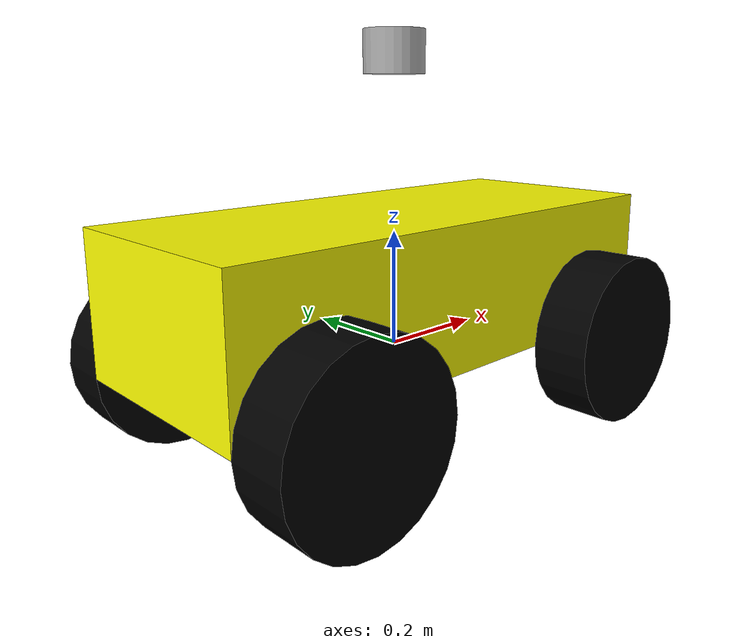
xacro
<?xml version="1.0"?>
<robot xmlns:xacro="http://www.ros.org/wiki/xacro"  name="robot">

    <xacro:include filename="husky_core.xacro" />

    <xacro:include filename="ros2_control_husky.xacro"/>

    <xacro:include filename="lidar_VLP16.xacro" />
    <xacro:include filename="imu.xacro" />

</robot>

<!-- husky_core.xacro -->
<robot xmlns:xacro="http://www.ros.org/wiki/xacro" >

    <xacro:include filename="inertial_macros.xacro"/>

    <!-- Setup colours -->

    <material name="white">
        <color rgba="1 1 1 1" />
    </material>

     <material name="yellow">
        <color rgba="1 1 0 1"/>
    </material>

    <material name="orange">
        <color rgba="1 0.5 0 1"/>
    </material>

    <material name="blue">
        <color rgba="0 0 1 1"/>
    </material>

    <material name="black">
        <color rgba="0 0 0 1"/>
    </material>

    <material name="red">
        <color rgba="1 0 0 1"/>
    </material>

    <material name="grey">
        <color rgba="0.5 0.5 0.5 1" />
    </material>

    <!-- BASE LINK -->

    <link name="base_link">

    </link>

    <!-- BASE_FOOTPRINT LINK -->

    <joint name="base_footprint_joint" type="fixed">
        <parent link="base_link"/>
        <child link="base_footprint"/>
        <origin xyz="0 0 0" rpy="0 0 0"/>
    </joint>

    <link name="base_footprint">
    </link>

    <!-- CHASSIS LINK -->
    <!-- Chassis link set at back of robot so (car length - wheel radius/2 = 0.77m) from base link which is also centre of front wheel diff drive-->
    <joint name="chassis_joint" type="fixed">
        <parent link="base_link"/>
        <child link="chassis"/>
        <origin xyz="-0.46 0 0"/>
    </joint>

    <!-- move visual origin to middle lenght and height -->
    <link name="chassis">
        <visual>
            <origin xyz="0.46 0 0.12"/>
            <geometry>
                <box size="0.92 0.38 0.24"/>
            </geometry>
            <material name="yellow"/>
        </visual>
        <collision>
            <origin xyz="0.46 0 0.12"/>
            <geometry>
                <box size="0.92 0.38 0.24"/>
            </geometry>
        </collision>
        <xacro:inertial_box mass="20.0" x="0.92" y="0.38" z="0.24">
            <origin xyz="0.46 0 0.12" rpy="0 0 0"/>
        </xacro:inertial_box>
    </link>

    <!-- Let gazebo know what colours are used -->
    <gazebo reference="chassis">
        <material>Gazebo/Yellow</material>
    </gazebo>

    <!-- LEFT FRONT (DRIVE) WHEEL LINK -->

    <joint name="left_front_wheel_joint" type="continuous">
        <parent link="base_link"/>
        <child link="left_front_wheel"/>
        <origin xyz="0.31 0.24 0" rpy="-${pi/2} 0 0" />
        <axis xyz="0 0 1"/>
    </joint>

    <link name="left_front_wheel">
        <visual>
            <geometry>
                <cylinder radius="0.15" length="0.1"/>
            </geometry>
            <material name="black"/>
        </visual>
        <collision>
            <geometry>
                <cylinder radius="0.15" length="0.1"/>
            </geometry>
        </collision>
        <xacro:inertial_cylinder mass="1.0" length="0.1" radius="0.15">
            <origin xyz="0 0 0" rpy="0 0 0"/>
        </xacro:inertial_cylinder>
    </link>

    <gazebo reference="left_front_wheel">
        <material>Gazebo/Black</material>
        <mu1>1.5</mu1>
        <mu2>0.2</mu2>
        <fdir1>1 0 0</fdir1>
    </gazebo>

    <!-- RIGHT FRONT (DRIVE) WHEEL LINK -->

    <joint name="right_front_wheel_joint" type="continuous">
        <parent link="base_link"/>
        <child link="right_front_wheel"/>
        <origin xyz="0.31 -0.24 0" rpy="${pi/2} 0 0" />
        <axis xyz="0 0 -1"/>
    </joint>

    <link name="right_front_wheel">
        <visual>
            <geometry>
                <cylinder radius="0.15" length="0.1"/>
            </geometry>
            <material name="black"/>
        </visual>
        <collision>
            <geometry>
                <cylinder radius="0.15" length="0.1"/>
            </geometry>
        </collision>
        <xacro:inertial_cylinder mass="1.0" length="0.1" radius="0.15">
            <origin xyz="0 0 0" rpy="0 0 0"/>
        </xacro:inertial_cylinder>
    </link>

    <gazebo reference="right_front_wheel">
        <material>Gazebo/Black</material>
        <mu1>1.5</mu1>
        <mu2>0.2</mu2>
        <fdir1>1 0 0</fdir1>
    </gazebo>

    <!-- LEFT REAR WHEEL LINK -->
    <!-- TEMPORARY FIX FOR BACK WHEEL JOINT STATES - MADE JOINT TYPE FIXED. CHNAGE TO CONTINUOUS ONCE ERROR FIXED -->
    <joint name="left_rear_wheel_joint" type="continuous">
        <parent link="base_link"/>
        <child link="left_rear_wheel"/>
        <origin xyz="-0.31 0.24 0" rpy="-${pi/2} 0 0" />
        <axis xyz="0 0 1"/>
    </joint>

    <link name="left_rear_wheel">
        <visual>
            <geometry>
                <cylinder radius="0.15" length="0.1"/>
            </geometry>
            <material name="black"/>
        </visual>
        <collision>
            <geometry>
                <cylinder radius="0.15" length="0.1"/>
            </geometry>
        </collision>
        <xacro:inertial_cylinder mass="1.0" length="0.1" radius="0.15">
            <origin xyz="0 0 0" rpy="0 0 0"/>
        </xacro:inertial_cylinder>
    </link>

    <!-- Make rear wheels slide with super low friction (and spherical collisions) coefficient to allow front wheel diff drive -->
    <gazebo reference="left_rear_wheel">
        <material>Gazebo/Black</material>
        <mu1>1.5</mu1>
        <mu2>0.2</mu2>
        <fdir1>1 0 0</fdir1>
    </gazebo>

    <!-- RIGHT REAR WHEEL LINK -->
    <!-- TEMPORARY FIX FOR BACK WHEEL JOINT STATES - MADE JOINT TYPE FIXED. CHNAGE TO CONTINUOUS ONCE ERROR FIXED -->
    <joint name="right_rear_wheel_joint" type="continuous">
        <parent link="base_link"/>
        <child link="right_rear_wheel"/>
        <origin xyz="-0.31 -0.24 0" rpy="${pi/2} 0 0" />
        <axis xyz="0 0 -1"/>
    </joint>

    <link name="right_rear_wheel">
        <visual>
            <geometry>
                <cylinder radius="0.15" length="0.1"/>
            </geometry>
            <material name="black"/>
        </visual>
        <collision>
            <geometry>
                <cylinder radius="0.15" length="0.1"/>
            </geometry>
        </collision>
        <xacro:inertial_cylinder mass="1.0" length="0.1" radius="0.15">
            <origin xyz="0 0 0" rpy="0 0 0"/>
        </xacro:inertial_cylinder>
    </link>

    <gazebo reference="right_rear_wheel">
        <material>Gazebo/Black</material>
        <mu1>1.5</mu1>
        <mu2>0.2</mu2>
        <fdir1>1 0 0</fdir1>
    </gazebo>

    <gazebo reference="base_link">
        <mu1>0.000002</mu1>
        <mu2>0.000002</mu2>
    </gazebo>

</robot>

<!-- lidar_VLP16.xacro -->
<robot xmlns:xacro="http://www.ros.org/wiki/xacro">

    <joint name="velodyne_base_mount_joint" type="fixed">
        <parent link="base_link" />
        <child link="velodyne_base_link" />
        <origin xyz="0.0 0 0.5" rpy="0 0 0" />
    </joint>

    <link name="velodyne_base_link">
        <inertial>
            <mass value="0.83" />
            <origin xyz="0 0 0.03585" />
            <inertia ixx="0.000908059425" ixy="0" ixz="0" iyy="0.000908059425" iyz="0" izz="0.0011049624" />
        </inertial>
        <visual>
            <geometry>
                <cylinder length="0.0717" radius="0.0516" />
            </geometry>
        </visual>
        <collision>
            <origin rpy="0 0 0" xyz="0 0 0.03585" />
            <geometry>
                <cylinder length="0.0717" radius="0.0516" />
            </geometry>
        </collision>
    </link>

    <joint name="velodyne_base_scan_joint" type="fixed">
        <origin rpy="0 0 0" xyz="0 0 0.0377" />
        <parent link="velodyne_base_link" />
        <child link="velodyne" />
    </joint>

    <link name="velodyne">
        <inertial>
            <mass value="0.01" />
            <origin xyz="0 0 0" />
            <inertia ixx="1e-7" ixy="0" ixz="0" iyy="1e-7" iyz="0" izz="1e-7" />
        </inertial>
        <visual>
            <origin xyz="0 0 -0.0377" />
            <geometry>
                <cylinder length="0.05" radius="0.02" />
            </geometry>
        </visual>
    </link>

    <!-- Gazebo requires the velodyne_gazebo_plugins package -->
    <gazebo reference="velodyne">
        <material>Gazebo/Red</material>
        <sensor name="velodyne-VLP16" type="ray">
            <pose>0 0 0 0 0 0</pose>
            <visualize>false</visualize>
            <update_rate>10</update_rate>
            <ray>
                <scan>
                    <horizontal>
                        <samples>440</samples>
                        <resolution>1</resolution>
                        <min_angle>-3.141592653589793</min_angle>
                        <max_angle>3.141592653589793</max_angle>
                    </horizontal>
                    <vertical>
                        <samples>16</samples>
                        <resolution>1</resolution>
                        <min_angle>-0.2617993877991494</min_angle>
                        <max_angle>
                            0.2617993877991494</max_angle>
                    </vertical>
                </scan>
                <range>
                    <min>0.3</min>
                    <max>131.0</max>
                    <resolution>0.001</resolution>
                </range>
                <noise>
                    <type>gaussian</type>
                    <mean>0.0</mean>
                    <stddev>0.0</stddev>
                </noise>
            </ray>
            <plugin filename="libgazebo_ros_velodyne_laser.so" name="gazebo_ros_laser_controller">
                <topicName>/points_raw</topicName>
                <frameName>velodyne</frameName>
                <min_range>0.9</min_range>
                <max_range>130.0</max_range>
                <gaussianNoise>0.008</gaussianNoise>
            </plugin>
        </sensor>
    </gazebo>
</robot>

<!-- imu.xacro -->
<robot xmlns:xacro="http://www.ros.org/wiki/xacro">

    <!--IMU_MODEL____________________________________________________________________-->

    <!--LINKS-->
    <link name="imu_link">
        <inertia>
            <origin xyz="0 0 0" rpy="0 0 0" />
            <mass value="0.1" />
            <inertia ixx="1" ixy="0.0" ixz="0.0" iyy="1" iyz="0.0" izz="1" />
        </inertia>
        <visual>
            <origin xyz="0 0 0" rpy="0 0 0" />
            <geometry>
                <box size="0.04 0.04 0.02" /> <!-- length x width x height -->
            </geometry>
            <material name="orange" />
        </visual>
        <collision>
            <origin xyz="0 0 0" rpy="0 0 0" />
            <geometry>
                <box size="0.04 0.04 0.02" />
            </geometry>
        </collision>
    </link>

    <!--JOINTS-->
    <joint name="base_imu_joint" type="fixed">
        <parent link="chassis" />
        <child link="imu_link" />
        <origin xyz="0.1 0 0.205" rpy="0 0 0" />
    </joint>

    <!--SENSOR-->
    <gazebo reference="imu_link">
        <material>Gazebo/Orange</material>
        <gravity>true</gravity>
        <sensor name="imu_sensor" type="imu">
            <always_on>true</always_on>
            <update_rate>100</update_rate>
            <visualize>true</visualize>
            <topic>__default_topic__</topic>
            <plugin filename="libgazebo_ros_imu_sensor.so" name="imu_plugin">
                <topicName>imu</topicName>
                <bodyName>imu_link</bodyName>
                <updateRateHZ>10.0</updateRateHZ>
                <gaussianNoise>0.0</gaussianNoise>
                <xyzOffset>0 0 0</xyzOffset>
                <rpyOffset>0 0 0</rpyOffset>
                <frameName>imu_link</frameName>
                <initialOrientationAsReference>false</initialOrientationAsReference>
            </plugin>
            <pose>0 0 0 0 0 0</pose>
        </sensor>
    </gazebo>

</robot>
